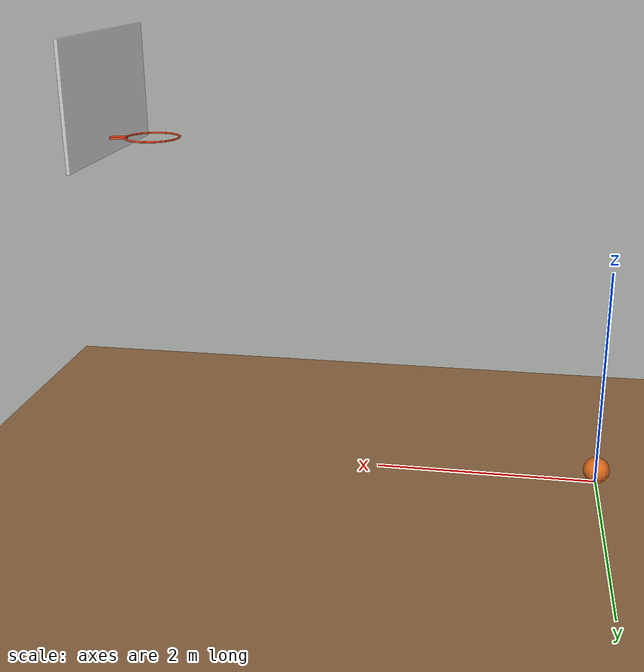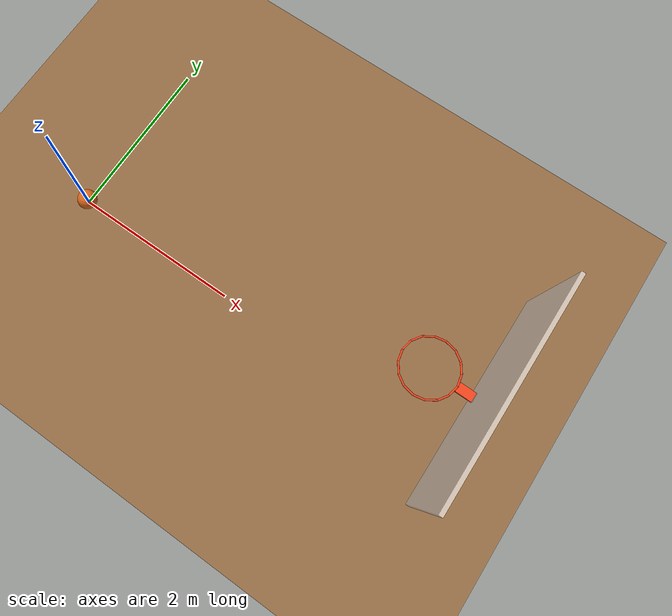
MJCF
<mujoco model="basketball_shot">
  <option timestep="0.002" gravity="0 0 -9.81"/>

  <visual>
    <global offwidth="1280" offheight="720"/>
  </visual>

  <asset>
    <material name="floor_mat" rgba="0.55 0.4 0.25 1"/>
    <material name="ball_mat" rgba="0.85 0.4 0.1 1"/>
    <material name="rim_mat" rgba="0.9 0.25 0.1 1"/>
    <material name="board_mat" rgba="0.95 0.95 0.95 0.6"/>
  </asset>

  <worldbody>
    <light name="sun" pos="2 -3 8" dir="0 0.3 -1" directional="true"/>
    <camera name="side" pos="3 -9 2.2" xyaxes="1 0 0 0 0.2 1"/>

    <geom name="floor" type="plane" size="20 20 0.1" material="floor_mat"/>

    <!-- Regulation size-7 ball: r = 0.1193 m, m = 0.62 kg, thin-shell inertia 2/3 m r^2 -->
    <body name="ball" pos="0 0 0.12">
      <freejoint name="ball_free"/>
      <inertial pos="0 0 0" mass="0.62" diaginertia="0.005883 0.005883 0.005883"/>
      <geom name="ball" type="sphere" size="0.1193" material="ball_mat" condim="6" friction="0.8 0.005 0.03"/>
    </body>

    <!-- Hoop: origin at rim center, 3.05 m high, 4 m from launch point. Inner diameter ~0.457 m, tube radius 8 mm -->
    <body name="hoop" pos="4 0 3.05">
      <geom name="rim_00" type="capsule" size="0.008" fromto="0.2366 0 0 0.21859 0.09054 0" material="rim_mat"/>
      <geom name="rim_01" type="capsule" size="0.008" fromto="0.21859 0.09054 0 0.16730 0.16730 0" material="rim_mat"/>
      <geom name="rim_02" type="capsule" size="0.008" fromto="0.16730 0.16730 0 0.09054 0.21859 0" material="rim_mat"/>
      <geom name="rim_03" type="capsule" size="0.008" fromto="0.09054 0.21859 0 0 0.2366 0" material="rim_mat"/>
      <geom name="rim_04" type="capsule" size="0.008" fromto="0 0.2366 0 -0.09054 0.21859 0" material="rim_mat"/>
      <geom name="rim_05" type="capsule" size="0.008" fromto="-0.09054 0.21859 0 -0.16730 0.16730 0" material="rim_mat"/>
      <geom name="rim_06" type="capsule" size="0.008" fromto="-0.16730 0.16730 0 -0.21859 0.09054 0" material="rim_mat"/>
      <geom name="rim_07" type="capsule" size="0.008" fromto="-0.21859 0.09054 0 -0.2366 0 0" material="rim_mat"/>
      <geom name="rim_08" type="capsule" size="0.008" fromto="-0.2366 0 0 -0.21859 -0.09054 0" material="rim_mat"/>
      <geom name="rim_09" type="capsule" size="0.008" fromto="-0.21859 -0.09054 0 -0.16730 -0.16730 0" material="rim_mat"/>
      <geom name="rim_10" type="capsule" size="0.008" fromto="-0.16730 -0.16730 0 -0.09054 -0.21859 0" material="rim_mat"/>
      <geom name="rim_11" type="capsule" size="0.008" fromto="-0.09054 -0.21859 0 0 -0.2366 0" material="rim_mat"/>
      <geom name="rim_12" type="capsule" size="0.008" fromto="0 -0.2366 0 0.09054 -0.21859 0" material="rim_mat"/>
      <geom name="rim_13" type="capsule" size="0.008" fromto="0.09054 -0.21859 0 0.16730 -0.16730 0" material="rim_mat"/>
      <geom name="rim_14" type="capsule" size="0.008" fromto="0.16730 -0.16730 0 0.21859 -0.09054 0" material="rim_mat"/>
      <geom name="rim_15" type="capsule" size="0.008" fromto="0.21859 -0.09054 0 0.2366 0 0" material="rim_mat"/>
      <geom name="neck" type="box" size="0.07 0.04 0.01" pos="0.31 0 -0.01" material="rim_mat"/>
      <geom name="backboard" type="box" size="0.015 0.9 0.525" pos="0.39 0 0.375" material="board_mat"/>
    </body>
  </worldbody>

  <keyframe>
    <!-- vx = 3.19315 m/s, vz = 8.4834 + g*dt/2 (semi-implicit Euler correction): apex ~3.79 m, reaches rim center at t = 1.253 s descending at ~50 deg -->
    <key name="start" qpos="0 0 0.12 1 0 0 0" qvel="3.19315 0 8.4932 0 0 0"/>
  </keyframe>
</mujoco>
